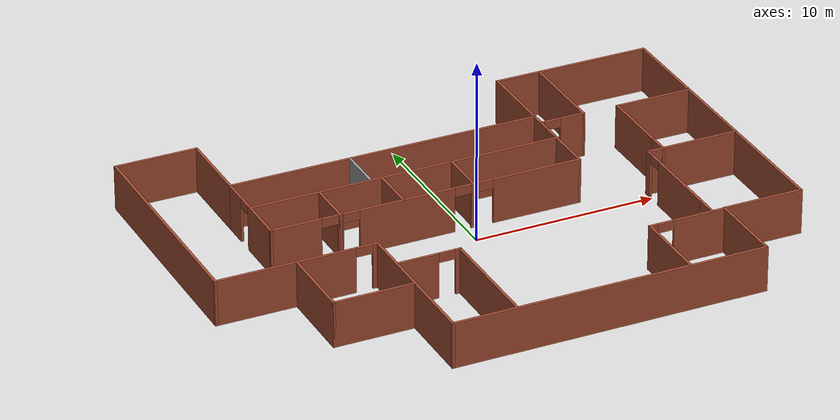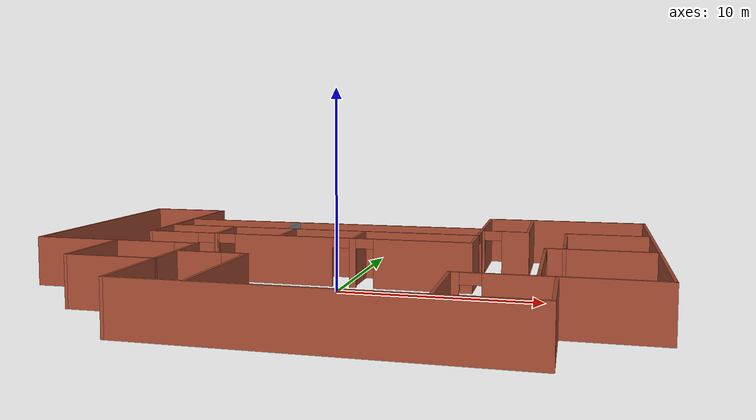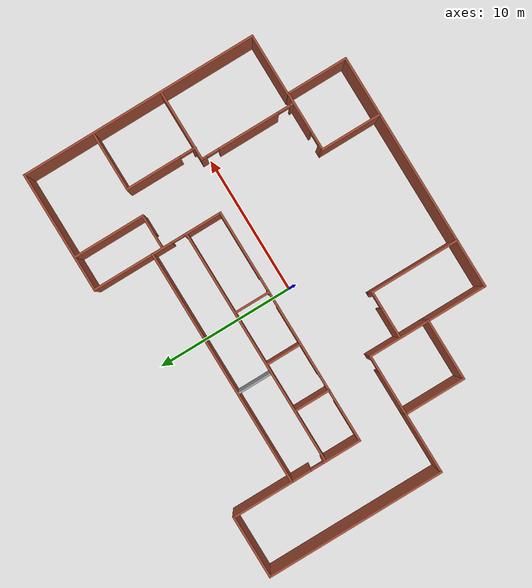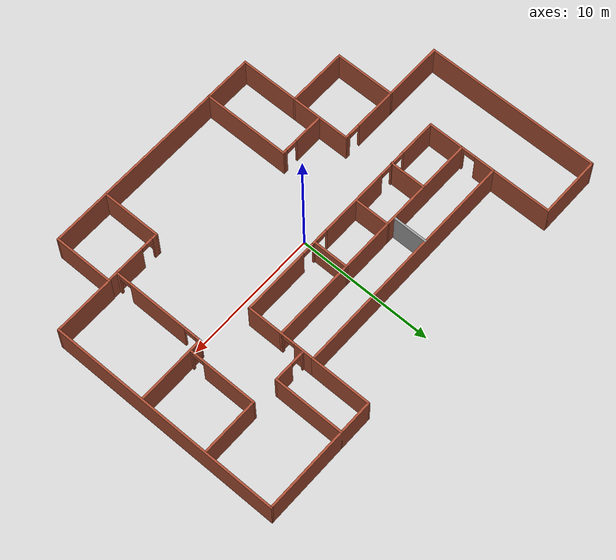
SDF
<?xml version='1.0'?>
<sdf version='1.6'>
  <model name='mybuilding'>
    <pose frame=''>-0.044618 0.031992 0 0 -0 0</pose>
    <link name='Wall_0'>
      <collision name='Wall_0_Collision'>
        <geometry>
          <box>
            <size>4.5 0.15 2.5</size>
          </box>
        </geometry>
        <pose frame=''>0 0 1.25 0 -0 0</pose>
      </collision>
      <visual name='Wall_0_Visual'>
        <pose frame=''>0 0 1.25 0 -0 0</pose>
        <geometry>
          <box>
            <size>4.5 0.15 2.5</size>
          </box>
        </geometry>
        <material>
          <script>
            <uri>file://media/materials/scripts/gazebo.material</uri>
            <name>Gazebo/Bricks</name>
          </script>
          <ambient>1 1 1 1</ambient>
        </material>
        <meta>
          <layer>0</layer>
        </meta>
      </visual>
      <pose frame=''>-12.8 10.725 0 0 -0 0</pose>
    </link>
    <link name='Wall_1'>
      <collision name='Wall_1_Collision'>
        <geometry>
          <box>
            <size>4.5 0.15 2.5</size>
          </box>
        </geometry>
        <pose frame=''>0 0 1.25 0 -0 0</pose>
      </collision>
      <visual name='Wall_1_Visual'>
        <pose frame=''>0 0 1.25 0 -0 0</pose>
        <geometry>
          <box>
            <size>4.5 0.15 2.5</size>
          </box>
        </geometry>
        <material>
          <script>
            <uri>file://media/materials/scripts/gazebo.material</uri>
            <name>Gazebo/Bricks</name>
          </script>
          <ambient>1 1 1 1</ambient>
        </material>
        <meta>
          <layer>0</layer>
        </meta>
      </visual>
      <pose frame=''>-10.625 8.55 0 0 0 -1.5708</pose>
    </link>
    <link name='Wall_16'>
      <collision name='Wall_16_Collision'>
        <geometry>
          <box>
            <size>13 0.15 2.5</size>
          </box>
        </geometry>
        <pose frame=''>0 0 1.25 0 -0 0</pose>
      </collision>
      <visual name='Wall_16_Visual'>
        <pose frame=''>0 0 1.25 0 -0 0</pose>
        <geometry>
          <box>
            <size>13 0.15 2.5</size>
          </box>
        </geometry>
        <material>
          <script>
            <uri>file://media/materials/scripts/gazebo.material</uri>
            <name>Gazebo/Bricks</name>
          </script>
          <ambient>1 1 1 1</ambient>
        </material>
        <meta>
          <layer>0</layer>
        </meta>
      </visual>
      <pose frame=''>-15.075 4.3 0 0 -0 1.5708</pose>
    </link>
    <link name='Wall_2'>
      <collision name='Wall_2_Collision'>
        <geometry>
          <box>
            <size>17.25 0.15 2.5</size>
          </box>
        </geometry>
        <pose frame=''>0 0 1.25 0 -0 0</pose>
      </collision>
      <visual name='Wall_2_Visual'>
        <pose frame=''>0 0 1.25 0 -0 0</pose>
        <geometry>
          <box>
            <size>17.25 0.15 2.5</size>
          </box>
        </geometry>
        <material>
          <script>
            <uri>file://media/materials/scripts/gazebo.material</uri>
            <name>Gazebo/Bricks</name>
          </script>
          <ambient>1 1 1 1</ambient>
        </material>
        <meta>
          <layer>0</layer>
        </meta>
      </visual>
      <pose frame=''>-2.075 6.375 0 0 -0 0</pose>
    </link>
    <link name='Wall_20'>
      <collision name='Wall_20_Collision'>
        <geometry>
          <box>
            <size>4.5 0.15 2.5</size>
          </box>
        </geometry>
        <pose frame=''>0 0 1.25 0 -0 0</pose>
      </collision>
      <visual name='Wall_20_Visual'>
        <pose frame=''>0 0 1.25 0 -0 0</pose>
        <geometry>
          <box>
            <size>4.5 0.15 2.5</size>
          </box>
        </geometry>
        <material>
          <script>
            <uri>file://media/materials/scripts/gazebo.material</uri>
            <name>Gazebo/Bricks</name>
          </script>
          <ambient>1 1 1 1</ambient>
        </material>
        <meta>
          <layer>0</layer>
        </meta>
      </visual>
      <pose frame=''>-12.9 -2.125 0 0 -0 0</pose>
    </link>
    <link name='Wall_21'>
      <collision name='Wall_21_Collision'>
        <geometry>
          <box>
            <size>4.5 0.15 2.5</size>
          </box>
        </geometry>
        <pose frame=''>0 0 1.25 0 -0 0</pose>
      </collision>
      <visual name='Wall_21_Visual'>
        <pose frame=''>0 0 1.25 0 -0 0</pose>
        <geometry>
          <box>
            <size>4.5 0.15 2.5</size>
          </box>
        </geometry>
        <material>
          <script>
            <uri>file://media/materials/scripts/gazebo.material</uri>
            <name>Gazebo/Bricks</name>
          </script>
          <ambient>1 1 1 1</ambient>
        </material>
        <meta>
          <layer>0</layer>
        </meta>
      </visual>
      <pose frame=''>-10.725 -4.3 0 0 0 -1.5708</pose>
    </link>
    <link name='Wall_22'>
      <collision name='Wall_22_Collision'>
        <geometry>
          <box>
            <size>4.5 0.15 2.5</size>
          </box>
        </geometry>
        <pose frame=''>0 0 1.25 0 -0 0</pose>
      </collision>
      <visual name='Wall_22_Visual'>
        <pose frame=''>0 0 1.25 0 -0 0</pose>
        <geometry>
          <box>
            <size>4.5 0.15 2.5</size>
          </box>
        </geometry>
        <material>
          <script>
            <uri>file://media/materials/scripts/gazebo.material</uri>
            <name>Gazebo/Bricks</name>
          </script>
          <ambient>1 1 1 1</ambient>
        </material>
        <meta>
          <layer>0</layer>
        </meta>
      </visual>
      <pose frame=''>-8.55 -6.475 0 0 -0 0</pose>
    </link>
    <link name='Wall_24'>
      <pose frame=''>-10.625 3.825 0 0 0 -1.5708</pose>
      <visual name='Wall_24_Visual_0'>
        <pose frame=''>-1.86673 0 1.25 0 -0 0</pose>
        <geometry>
          <box>
            <size>1.51653 0.15 2.5</size>
          </box>
        </geometry>
        <material>
          <script>
            <uri>file://media/materials/scripts/gazebo.material</uri>
            <name>Gazebo/Bricks</name>
          </script>
          <ambient>1 1 1 1</ambient>
        </material>
        <meta>
          <layer>0</layer>
        </meta>
      </visual>
      <collision name='Wall_24_Collision_0'>
        <geometry>
          <box>
            <size>1.51653 0.15 2.5</size>
          </box>
        </geometry>
        <pose frame=''>-1.86673 0 1.25 0 -0 0</pose>
      </collision>
      <visual name='Wall_24_Visual_1'>
        <pose frame=''>1.20827 0 1.25 0 -0 0</pose>
        <geometry>
          <box>
            <size>2.83347 0.15 2.5</size>
          </box>
        </geometry>
        <material>
          <script>
            <uri>file://media/materials/scripts/gazebo.material</uri>
            <name>Gazebo/Bricks</name>
          </script>
          <ambient>1 1 1 1</ambient>
        </material>
        <meta>
          <layer>0</layer>
        </meta>
      </visual>
      <collision name='Wall_24_Collision_1'>
        <geometry>
          <box>
            <size>2.83347 0.15 2.5</size>
          </box>
        </geometry>
        <pose frame=''>1.20827 0 1.25 0 -0 0</pose>
      </collision>
      <visual name='Wall_24_Visual_2'>
        <pose frame=''>-0.658467 0 2.25 0 -0 0</pose>
        <geometry>
          <box>
            <size>0.9 0.15 0.5</size>
          </box>
        </geometry>
        <material>
          <script>
            <uri>file://media/materials/scripts/gazebo.material</uri>
            <name>Gazebo/Bricks</name>
          </script>
          <ambient>1 1 1 1</ambient>
        </material>
        <meta>
          <layer>0</layer>
        </meta>
      </visual>
      <collision name='Wall_24_Collision_2'>
        <geometry>
          <box>
            <size>0.9 0.15 0.5</size>
          </box>
        </geometry>
        <pose frame=''>-0.658467 0 2.25 0 -0 0</pose>
      </collision>
    </link>
    <link name='Wall_25'>
      <pose frame=''>-2.075 1.275 0 0 -0 0</pose>
      <visual name='Wall_25_Visual_0'>
        <pose frame=''>-7.22106 0 1.25 0 -0 0</pose>
        <geometry>
          <box>
            <size>2.80789 0.15 2.5</size>
          </box>
        </geometry>
        <material>
          <script>
            <uri>file://media/materials/scripts/gazebo.material</uri>
            <name>Gazebo/Bricks</name>
          </script>
          <ambient>1 1 1 1</ambient>
        </material>
        <meta>
          <layer>0</layer>
        </meta>
      </visual>
      <collision name='Wall_25_Collision_0'>
        <geometry>
          <box>
            <size>2.80789 0.15 2.5</size>
          </box>
        </geometry>
        <pose frame=''>-7.22106 0 1.25 0 -0 0</pose>
      </collision>
      <visual name='Wall_25_Visual_1'>
        <pose frame=''>-4.77525 0 1.25 0 -0 0</pose>
        <geometry>
          <box>
            <size>0.283739 0.15 2.5</size>
          </box>
        </geometry>
        <material>
          <script>
            <uri>file://media/materials/scripts/gazebo.material</uri>
            <name>Gazebo/Bricks</name>
          </script>
          <ambient>1 1 1 1</ambient>
        </material>
        <meta>
          <layer>0</layer>
        </meta>
      </visual>
      <collision name='Wall_25_Collision_1'>
        <geometry>
          <box>
            <size>0.283739 0.15 2.5</size>
          </box>
        </geometry>
        <pose frame=''>-4.77525 0 1.25 0 -0 0</pose>
      </collision>
      <visual name='Wall_25_Visual_2'>
        <pose frame=''>-1.10296 0 1.25 0 -0 0</pose>
        <geometry>
          <box>
            <size>5.26082 0.15 2.5</size>
          </box>
        </geometry>
        <material>
          <script>
            <uri>file://media/materials/scripts/gazebo.material</uri>
            <name>Gazebo/Bricks</name>
          </script>
          <ambient>1 1 1 1</ambient>
        </material>
        <meta>
          <layer>0</layer>
        </meta>
      </visual>
      <collision name='Wall_25_Collision_2'>
        <geometry>
          <box>
            <size>5.26082 0.15 2.5</size>
          </box>
        </geometry>
        <pose frame=''>-1.10296 0 1.25 0 -0 0</pose>
      </collision>
      <visual name='Wall_25_Visual_3'>
        <pose frame=''>2.59622 0 1.25 0 -0 0</pose>
        <geometry>
          <box>
            <size>0.337545 0.15 2.5</size>
          </box>
        </geometry>
        <material>
          <script>
            <uri>file://media/materials/scripts/gazebo.material</uri>
            <name>Gazebo/Bricks</name>
          </script>
          <ambient>1 1 1 1</ambient>
        </material>
        <meta>
          <layer>0</layer>
        </meta>
      </visual>
      <collision name='Wall_25_Collision_3'>
        <geometry>
          <box>
            <size>0.337545 0.15 2.5</size>
          </box>
        </geometry>
        <pose frame=''>2.59622 0 1.25 0 -0 0</pose>
      </collision>
      <visual name='Wall_25_Visual_4'>
        <pose frame=''>6.145 0 1.25 0 -0 0</pose>
        <geometry>
          <box>
            <size>4.96001 0.15 2.5</size>
          </box>
        </geometry>
        <material>
          <script>
            <uri>file://media/materials/scripts/gazebo.material</uri>
            <name>Gazebo/Bricks</name>
          </script>
          <ambient>1 1 1 1</ambient>
        </material>
        <meta>
          <layer>0</layer>
        </meta>
      </visual>
      <collision name='Wall_25_Collision_4'>
        <geometry>
          <box>
            <size>4.96001 0.15 2.5</size>
          </box>
        </geometry>
        <pose frame=''>6.145 0 1.25 0 -0 0</pose>
      </collision>
      <visual name='Wall_25_Visual_5'>
        <pose frame=''>-5.36712 0 2.25 0 -0 0</pose>
        <geometry>
          <box>
            <size>0.9 0.15 0.5</size>
          </box>
        </geometry>
        <material>
          <script>
            <uri>file://media/materials/scripts/gazebo.material</uri>
            <name>Gazebo/Bricks</name>
          </script>
          <ambient>1 1 1 1</ambient>
        </material>
        <meta>
          <layer>0</layer>
        </meta>
      </visual>
      <collision name='Wall_25_Collision_5'>
        <geometry>
          <box>
            <size>0.9 0.15 0.5</size>
          </box>
        </geometry>
        <pose frame=''>-5.36712 0 2.25 0 -0 0</pose>
      </collision>
      <visual name='Wall_25_Visual_6'>
        <pose frame=''>-4.18338 0 2.25 0 -0 0</pose>
        <geometry>
          <box>
            <size>0.9 0.15 0.5</size>
          </box>
        </geometry>
        <material>
          <script>
            <uri>file://media/materials/scripts/gazebo.material</uri>
            <name>Gazebo/Bricks</name>
          </script>
          <ambient>1 1 1 1</ambient>
        </material>
        <meta>
          <layer>0</layer>
        </meta>
      </visual>
      <collision name='Wall_25_Collision_6'>
        <geometry>
          <box>
            <size>0.9 0.15 0.5</size>
          </box>
        </geometry>
        <pose frame=''>-4.18338 0 2.25 0 -0 0</pose>
      </collision>
      <visual name='Wall_25_Visual_7'>
        <pose frame=''>1.97745 0 2.25 0 -0 0</pose>
        <geometry>
          <box>
            <size>0.9 0.15 0.5</size>
          </box>
        </geometry>
        <material>
          <script>
            <uri>file://media/materials/scripts/gazebo.material</uri>
            <name>Gazebo/Bricks</name>
          </script>
          <ambient>1 1 1 1</ambient>
        </material>
        <meta>
          <layer>0</layer>
        </meta>
      </visual>
      <collision name='Wall_25_Collision_7'>
        <geometry>
          <box>
            <size>0.9 0.15 0.5</size>
          </box>
        </geometry>
        <pose frame=''>1.97745 0 2.25 0 -0 0</pose>
      </collision>
      <visual name='Wall_25_Visual_8'>
        <pose frame=''>3.21499 0 2.25 0 -0 0</pose>
        <geometry>
          <box>
            <size>0.9 0.15 0.5</size>
          </box>
        </geometry>
        <material>
          <script>
            <uri>file://media/materials/scripts/gazebo.material</uri>
            <name>Gazebo/Bricks</name>
          </script>
          <ambient>1 1 1 1</ambient>
        </material>
        <meta>
          <layer>0</layer>
        </meta>
      </visual>
      <collision name='Wall_25_Collision_8'>
        <geometry>
          <box>
            <size>0.9 0.15 0.5</size>
          </box>
        </geometry>
        <pose frame=''>3.21499 0 2.25 0 -0 0</pose>
      </collision>
    </link>
    <link name='Wall_26'>
      <pose frame=''>6.475 3.825 0 0 -0 1.5708</pose>
      <visual name='Wall_26_Visual_0'>
        <pose frame=''>-1.22172 0 1.25 0 -0 0</pose>
        <geometry>
          <box>
            <size>2.80656 0.15 2.5</size>
          </box>
        </geometry>
        <material>
          <script>
            <uri>file://media/materials/scripts/gazebo.material</uri>
            <name>Gazebo/Bricks</name>
          </script>
          <ambient>1 1 1 1</ambient>
        </material>
        <meta>
          <layer>0</layer>
        </meta>
      </visual>
      <collision name='Wall_26_Collision_0'>
        <geometry>
          <box>
            <size>2.80656 0.15 2.5</size>
          </box>
        </geometry>
        <pose frame=''>-1.22172 0 1.25 0 -0 0</pose>
      </collision>
      <visual name='Wall_26_Visual_1'>
        <pose frame=''>1.85328 0 1.25 0 -0 0</pose>
        <geometry>
          <box>
            <size>1.54344 0.15 2.5</size>
          </box>
        </geometry>
        <material>
          <script>
            <uri>file://media/materials/scripts/gazebo.material</uri>
            <name>Gazebo/Bricks</name>
          </script>
          <ambient>1 1 1 1</ambient>
        </material>
        <meta>
          <layer>0</layer>
        </meta>
      </visual>
      <collision name='Wall_26_Collision_1'>
        <geometry>
          <box>
            <size>1.54344 0.15 2.5</size>
          </box>
        </geometry>
        <pose frame=''>1.85328 0 1.25 0 -0 0</pose>
      </collision>
      <visual name='Wall_26_Visual_2'>
        <pose frame=''>0.631564 0 2.25 0 -0 0</pose>
        <geometry>
          <box>
            <size>0.9 0.15 0.5</size>
          </box>
        </geometry>
        <material>
          <script>
            <uri>file://media/materials/scripts/gazebo.material</uri>
            <name>Gazebo/Bricks</name>
          </script>
          <ambient>1 1 1 1</ambient>
        </material>
        <meta>
          <layer>0</layer>
        </meta>
      </visual>
      <collision name='Wall_26_Collision_2'>
        <geometry>
          <box>
            <size>0.9 0.15 0.5</size>
          </box>
        </geometry>
        <pose frame=''>0.631564 0 2.25 0 -0 0</pose>
      </collision>
    </link>
    <link name='Wall_28'>
      <collision name='Wall_28_Collision'>
        <geometry>
          <box>
            <size>17.25 0.15 2.5</size>
          </box>
        </geometry>
        <pose frame=''>0 0 1.25 0 -0 0</pose>
      </collision>
      <visual name='Wall_28_Visual'>
        <pose frame=''>0 0 1.25 0 -0 0</pose>
        <geometry>
          <box>
            <size>17.25 0.15 2.5</size>
          </box>
        </geometry>
        <material>
          <script>
            <uri>file://media/materials/scripts/gazebo.material</uri>
            <name>Gazebo/Bricks</name>
          </script>
          <ambient>1 1 1 1</ambient>
        </material>
        <meta>
          <layer>0</layer>
        </meta>
      </visual>
      <pose frame=''>-2.06669 3.83779 0 0 -0 0</pose>
    </link>
    <link name='Wall_3'>
      <collision name='Wall_3_Collision'>
        <geometry>
          <box>
            <size>4.5 0.15 2.5</size>
          </box>
        </geometry>
        <pose frame=''>0 0 1.25 0 -0 0</pose>
      </collision>
      <visual name='Wall_3_Visual'>
        <pose frame=''>0 0 1.25 0 -0 0</pose>
        <geometry>
          <box>
            <size>4.5 0.15 2.5</size>
          </box>
        </geometry>
        <material>
          <script>
            <uri>file://media/materials/scripts/gazebo.material</uri>
            <name>Gazebo/Bricks</name>
          </script>
          <ambient>1 1 1 1</ambient>
        </material>
        <meta>
          <layer>0</layer>
        </meta>
      </visual>
      <pose frame=''>6.475 8.55 0 0 -0 1.5708</pose>
    </link>
    <link name='Wall_30'>
      <collision name='Wall_30_Collision'>
        <geometry>
          <box>
            <size>2.5 0.15 2.5</size>
          </box>
        </geometry>
        <pose frame=''>0 0 1.25 0 -0 0</pose>
      </collision>
      <visual name='Wall_30_Visual'>
        <pose frame=''>0 0 1.25 0 -0 0</pose>
        <geometry>
          <box>
            <size>2.5 0.15 2.5</size>
          </box>
        </geometry>
        <material>
          <script>
            <uri>file://media/materials/scripts/gazebo.material</uri>
            <name>Gazebo/Grey</name>
          </script>
          <ambient>1 1 1 1</ambient>
        </material>
        <meta>
          <layer>0</layer>
        </meta>
      </visual>
      <pose frame=''>-3.99851 5.16479 0 0 0 -1.5708</pose>
    </link>
    <link name='Wall_33'>
      <collision name='Wall_33_Collision'>
        <geometry>
          <box>
            <size>2.7 0.15 2.5</size>
          </box>
        </geometry>
        <pose frame=''>0 0 1.25 0 -0 0</pose>
      </collision>
      <visual name='Wall_33_Visual'>
        <pose frame=''>0 0 1.25 0 -0 0</pose>
        <geometry>
          <box>
            <size>2.7 0.15 2.5</size>
          </box>
        </geometry>
        <material>
          <script>
            <uri>file://media/materials/scripts/gazebo.material</uri>
            <name>Gazebo/Bricks</name>
          </script>
          <ambient>1 1 1 1</ambient>
        </material>
        <meta>
          <layer>0</layer>
        </meta>
      </visual>
      <pose frame=''>-6.85025 2.53589 0 0 0 -1.5708</pose>
    </link>
    <link name='Wall_35'>
      <collision name='Wall_35_Collision'>
        <geometry>
          <box>
            <size>2.7 0.15 2.5</size>
          </box>
        </geometry>
        <pose frame=''>0 0 1.25 0 -0 0</pose>
      </collision>
      <visual name='Wall_35_Visual'>
        <pose frame=''>0 0 1.25 0 -0 0</pose>
        <geometry>
          <box>
            <size>2.7 0.15 2.5</size>
          </box>
        </geometry>
        <material>
          <script>
            <uri>file://media/materials/scripts/gazebo.material</uri>
            <name>Gazebo/Bricks</name>
          </script>
          <ambient>1 1 1 1</ambient>
        </material>
        <meta>
          <layer>0</layer>
        </meta>
      </visual>
      <pose frame=''>-3.37974 2.56279 0 0 0 -1.5708</pose>
    </link>
    <link name='Wall_37'>
      <collision name='Wall_37_Collision'>
        <geometry>
          <box>
            <size>2.7 0.15 2.5</size>
          </box>
        </geometry>
        <pose frame=''>0 0 1.25 0 -0 0</pose>
      </collision>
      <visual name='Wall_37_Visual'>
        <pose frame=''>0 0 1.25 0 -0 0</pose>
        <geometry>
          <box>
            <size>2.7 0.15 2.5</size>
          </box>
        </geometry>
        <material>
          <script>
            <uri>file://media/materials/scripts/gazebo.material</uri>
            <name>Gazebo/Bricks</name>
          </script>
          <ambient>1 1 1 1</ambient>
        </material>
        <meta>
          <layer>0</layer>
        </meta>
      </visual>
      <pose frame=''>0.52122 2.56279 0 0 0 -1.5708</pose>
    </link>
    <link name='Wall_39'>
      <collision name='Wall_39_Collision'>
        <geometry>
          <box>
            <size>5.25 0.15 2.5</size>
          </box>
        </geometry>
        <pose frame=''>0 0 1.25 0 -0 0</pose>
      </collision>
      <visual name='Wall_39_Visual'>
        <pose frame=''>0 0 1.25 0 -0 0</pose>
        <geometry>
          <box>
            <size>5.25 0.15 2.5</size>
          </box>
        </geometry>
        <material>
          <script>
            <uri>file://media/materials/scripts/gazebo.material</uri>
            <name>Gazebo/Bricks</name>
          </script>
          <ambient>1 1 1 1</ambient>
        </material>
        <meta>
          <layer>0</layer>
        </meta>
      </visual>
      <pose frame=''>8.91501 8.175 0 0 0 -1.5708</pose>
    </link>
    <link name='Wall_4'>
      <collision name='Wall_4_Collision'>
        <geometry>
          <box>
            <size>8.75 0.15 2.5</size>
          </box>
        </geometry>
        <pose frame=''>0 0 1.25 0 -0 0</pose>
      </collision>
      <visual name='Wall_4_Visual'>
        <pose frame=''>0 0 1.25 0 -0 0</pose>
        <geometry>
          <box>
            <size>8.75 0.15 2.5</size>
          </box>
        </geometry>
        <material>
          <script>
            <uri>file://media/materials/scripts/gazebo.material</uri>
            <name>Gazebo/Bricks</name>
          </script>
          <ambient>1 1 1 1</ambient>
        </material>
        <meta>
          <layer>0</layer>
        </meta>
      </visual>
      <pose frame=''>10.775 10.725 0 0 -0 0</pose>
    </link>
    <link name='Wall_40'>
      <pose frame=''>7.74001 5.625 0 0 -0 3.14159</pose>
      <visual name='Wall_40_Visual_0'>
        <pose frame=''>-0.536244 0 1.25 0 -0 0</pose>
        <geometry>
          <box>
            <size>1.42751 0.15 2.5</size>
          </box>
        </geometry>
        <material>
          <script>
            <uri>file://media/materials/scripts/gazebo.material</uri>
            <name>Gazebo/Bricks</name>
          </script>
          <ambient>1 1 1 1</ambient>
        </material>
        <meta>
          <layer>0</layer>
        </meta>
      </visual>
      <collision name='Wall_40_Collision_0'>
        <geometry>
          <box>
            <size>1.42751 0.15 2.5</size>
          </box>
        </geometry>
        <pose frame=''>-0.536244 0 1.25 0 -0 0</pose>
      </collision>
      <visual name='Wall_40_Visual_1'>
        <pose frame=''>1.16376 0 1.25 0 -0 0</pose>
        <geometry>
          <box>
            <size>0.172488 0.15 2.5</size>
          </box>
        </geometry>
        <material>
          <script>
            <uri>file://media/materials/scripts/gazebo.material</uri>
            <name>Gazebo/Bricks</name>
          </script>
          <ambient>1 1 1 1</ambient>
        </material>
        <meta>
          <layer>0</layer>
        </meta>
      </visual>
      <collision name='Wall_40_Collision_1'>
        <geometry>
          <box>
            <size>0.172488 0.15 2.5</size>
          </box>
        </geometry>
        <pose frame=''>1.16376 0 1.25 0 -0 0</pose>
      </collision>
      <visual name='Wall_40_Visual_2'>
        <pose frame=''>0.627512 0 2.25 0 -0 0</pose>
        <geometry>
          <box>
            <size>0.9 0.15 0.5</size>
          </box>
        </geometry>
        <material>
          <script>
            <uri>file://media/materials/scripts/gazebo.material</uri>
            <name>Gazebo/Bricks</name>
          </script>
          <ambient>1 1 1 1</ambient>
        </material>
        <meta>
          <layer>0</layer>
        </meta>
      </visual>
      <collision name='Wall_40_Collision_2'>
        <geometry>
          <box>
            <size>0.9 0.15 0.5</size>
          </box>
        </geometry>
        <pose frame=''>0.627512 0 2.25 0 -0 0</pose>
      </collision>
    </link>
    <link name='Wall_42'>
      <pose frame=''>-8.55 -2.125 0 0 -0 0</pose>
      <visual name='Wall_42_Visual_0'>
        <pose frame=''>-0.634639 0 1.25 0 -0 0</pose>
        <geometry>
          <box>
            <size>3.23072 0.15 2.5</size>
          </box>
        </geometry>
        <material>
          <script>
            <uri>file://media/materials/scripts/gazebo.material</uri>
            <name>Gazebo/Bricks</name>
          </script>
          <ambient>1 1 1 1</ambient>
        </material>
        <meta>
          <layer>0</layer>
        </meta>
      </visual>
      <collision name='Wall_42_Collision_0'>
        <geometry>
          <box>
            <size>3.23072 0.15 2.5</size>
          </box>
        </geometry>
        <pose frame=''>-0.634639 0 1.25 0 -0 0</pose>
      </collision>
      <visual name='Wall_42_Visual_1'>
        <pose frame=''>2.06536 0 1.25 0 -0 0</pose>
        <geometry>
          <box>
            <size>0.369277 0.15 2.5</size>
          </box>
        </geometry>
        <material>
          <script>
            <uri>file://media/materials/scripts/gazebo.material</uri>
            <name>Gazebo/Bricks</name>
          </script>
          <ambient>1 1 1 1</ambient>
        </material>
        <meta>
          <layer>0</layer>
        </meta>
      </visual>
      <collision name='Wall_42_Collision_1'>
        <geometry>
          <box>
            <size>0.369277 0.15 2.5</size>
          </box>
        </geometry>
        <pose frame=''>2.06536 0 1.25 0 -0 0</pose>
      </collision>
      <visual name='Wall_42_Visual_2'>
        <pose frame=''>1.43072 0 2.25 0 -0 0</pose>
        <geometry>
          <box>
            <size>0.9 0.15 0.5</size>
          </box>
        </geometry>
        <material>
          <script>
            <uri>file://media/materials/scripts/gazebo.material</uri>
            <name>Gazebo/Bricks</name>
          </script>
          <ambient>1 1 1 1</ambient>
        </material>
        <meta>
          <layer>0</layer>
        </meta>
      </visual>
      <collision name='Wall_42_Collision_2'>
        <geometry>
          <box>
            <size>0.9 0.15 0.5</size>
          </box>
        </geometry>
        <pose frame=''>1.43072 0 2.25 0 -0 0</pose>
      </collision>
    </link>
    <link name='Wall_43'>
      <collision name='Wall_43_Collision'>
        <geometry>
          <box>
            <size>4.5 0.15 2.5</size>
          </box>
        </geometry>
        <pose frame=''>0 0 1.25 0 -0 0</pose>
      </collision>
      <visual name='Wall_43_Visual'>
        <pose frame=''>0 0 1.25 0 -0 0</pose>
        <geometry>
          <box>
            <size>4.5 0.15 2.5</size>
          </box>
        </geometry>
        <material>
          <script>
            <uri>file://media/materials/scripts/gazebo.material</uri>
            <name>Gazebo/Bricks</name>
          </script>
          <ambient>1 1 1 1</ambient>
        </material>
        <meta>
          <layer>0</layer>
        </meta>
      </visual>
      <pose frame=''>-6.375 -4.3 0 0 0 -1.5708</pose>
    </link>
    <link name='Wall_45'>
      <pose frame=''>-4.61028 -4.36767 0 0 -0 0</pose>
      <visual name='Wall_45_Visual_0'>
        <pose frame=''>-0.632697 0 1.25 0 -0 0</pose>
        <geometry>
          <box>
            <size>2.23461 0.15 2.5</size>
          </box>
        </geometry>
        <material>
          <script>
            <uri>file://media/materials/scripts/gazebo.material</uri>
            <name>Gazebo/Bricks</name>
          </script>
          <ambient>1 1 1 1</ambient>
        </material>
        <meta>
          <layer>0</layer>
        </meta>
      </visual>
      <collision name='Wall_45_Collision_0'>
        <geometry>
          <box>
            <size>2.23461 0.15 2.5</size>
          </box>
        </geometry>
        <pose frame=''>-0.632697 0 1.25 0 -0 0</pose>
      </collision>
      <visual name='Wall_45_Visual_1'>
        <pose frame=''>1.5673 0 1.25 0 -0 0</pose>
        <geometry>
          <box>
            <size>0.365393 0.15 2.5</size>
          </box>
        </geometry>
        <material>
          <script>
            <uri>file://media/materials/scripts/gazebo.material</uri>
            <name>Gazebo/Bricks</name>
          </script>
          <ambient>1 1 1 1</ambient>
        </material>
        <meta>
          <layer>0</layer>
        </meta>
      </visual>
      <collision name='Wall_45_Collision_1'>
        <geometry>
          <box>
            <size>0.365393 0.15 2.5</size>
          </box>
        </geometry>
        <pose frame=''>1.5673 0 1.25 0 -0 0</pose>
      </collision>
      <visual name='Wall_45_Visual_2'>
        <pose frame=''>0.934607 0 2.25 0 -0 0</pose>
        <geometry>
          <box>
            <size>0.9 0.15 0.5</size>
          </box>
        </geometry>
        <material>
          <script>
            <uri>file://media/materials/scripts/gazebo.material</uri>
            <name>Gazebo/Bricks</name>
          </script>
          <ambient>1 1 1 1</ambient>
        </material>
        <meta>
          <layer>0</layer>
        </meta>
      </visual>
      <collision name='Wall_45_Collision_2'>
        <geometry>
          <box>
            <size>0.9 0.15 0.5</size>
          </box>
        </geometry>
        <pose frame=''>0.934607 0 2.25 0 -0 0</pose>
      </collision>
    </link>
    <link name='Wall_46'>
      <collision name='Wall_46_Collision'>
        <geometry>
          <box>
            <size>6.5 0.15 2.5</size>
          </box>
        </geometry>
        <pose frame=''>0 0 1.25 0 -0 0</pose>
      </collision>
      <visual name='Wall_46_Visual'>
        <pose frame=''>0 0 1.25 0 -0 0</pose>
        <geometry>
          <box>
            <size>6.5 0.15 2.5</size>
          </box>
        </geometry>
        <material>
          <script>
            <uri>file://media/materials/scripts/gazebo.material</uri>
            <name>Gazebo/Bricks</name>
          </script>
          <ambient>1 1 1 1</ambient>
        </material>
        <meta>
          <layer>0</layer>
        </meta>
      </visual>
      <pose frame=''>-2.93528 -7.54267 0 0 0 -1.5708</pose>
    </link>
    <link name='Wall_48'>
      <collision name='Wall_48_Collision'>
        <geometry>
          <box>
            <size>4.4 0.15 2.5</size>
          </box>
        </geometry>
        <pose frame=''>0 0 1.25 0 -0 0</pose>
      </collision>
      <visual name='Wall_48_Visual'>
        <pose frame=''>0 0 1.25 0 -0 0</pose>
        <geometry>
          <box>
            <size>4.4 0.15 2.5</size>
          </box>
        </geometry>
        <material>
          <script>
            <uri>file://media/materials/scripts/gazebo.material</uri>
            <name>Gazebo/Bricks</name>
          </script>
          <ambient>1 1 1 1</ambient>
        </material>
        <meta>
          <layer>0</layer>
        </meta>
      </visual>
      <pose frame=''>6.52062 -8.53801 0 0 -0 1.5708</pose>
    </link>
    <link name='Wall_5'>
      <collision name='Wall_5_Collision'>
        <geometry>
          <box>
            <size>17.25 0.15 2.5</size>
          </box>
        </geometry>
        <pose frame=''>0 0 1.25 0 -0 0</pose>
      </collision>
      <visual name='Wall_5_Visual'>
        <pose frame=''>0 0 1.25 0 -0 0</pose>
        <geometry>
          <box>
            <size>17.25 0.15 2.5</size>
          </box>
        </geometry>
        <material>
          <script>
            <uri>file://media/materials/scripts/gazebo.material</uri>
            <name>Gazebo/Bricks</name>
          </script>
          <ambient>1 1 1 1</ambient>
        </material>
        <meta>
          <layer>0</layer>
        </meta>
      </visual>
      <pose frame=''>15.075 2.175 0 0 0 -1.5708</pose>
    </link>
    <link name='Wall_53'>
      <pose frame=''>8.57062 -6.41301 0 0 -0 0</pose>
      <visual name='Wall_53_Visual_0'>
        <pose frame=''>-1.88205 0 1.25 0 -0 0</pose>
        <geometry>
          <box>
            <size>0.485901 0.15 2.5</size>
          </box>
        </geometry>
        <material>
          <script>
            <uri>file://media/materials/scripts/gazebo.material</uri>
            <name>Gazebo/Bricks</name>
          </script>
          <ambient>1 1 1 1</ambient>
        </material>
        <meta>
          <layer>0</layer>
        </meta>
      </visual>
      <collision name='Wall_53_Collision_0'>
        <geometry>
          <box>
            <size>0.485901 0.15 2.5</size>
          </box>
        </geometry>
        <pose frame=''>-1.88205 0 1.25 0 -0 0</pose>
      </collision>
      <visual name='Wall_53_Visual_1'>
        <pose frame=''>0.692951 0 1.25 0 -0 0</pose>
        <geometry>
          <box>
            <size>2.8641 0.15 2.5</size>
          </box>
        </geometry>
        <material>
          <script>
            <uri>file://media/materials/scripts/gazebo.material</uri>
            <name>Gazebo/Bricks</name>
          </script>
          <ambient>1 1 1 1</ambient>
        </material>
        <meta>
          <layer>0</layer>
        </meta>
      </visual>
      <collision name='Wall_53_Collision_1'>
        <geometry>
          <box>
            <size>2.8641 0.15 2.5</size>
          </box>
        </geometry>
        <pose frame=''>0.692951 0 1.25 0 -0 0</pose>
      </collision>
      <visual name='Wall_53_Visual_2'>
        <pose frame=''>-1.1891 0 2.25 0 -0 0</pose>
        <geometry>
          <box>
            <size>0.9 0.15 0.5</size>
          </box>
        </geometry>
        <material>
          <script>
            <uri>file://media/materials/scripts/gazebo.material</uri>
            <name>Gazebo/Bricks</name>
          </script>
          <ambient>1 1 1 1</ambient>
        </material>
        <meta>
          <layer>0</layer>
        </meta>
      </visual>
      <collision name='Wall_53_Collision_2'>
        <geometry>
          <box>
            <size>0.9 0.15 0.5</size>
          </box>
        </geometry>
        <pose frame=''>-1.1891 0 2.25 0 -0 0</pose>
      </collision>
    </link>
    <link name='Wall_55'>
      <pose frame=''>10.018 -2.93351 0 0 -0 1.5708</pose>
      <visual name='Wall_55_Visual_0'>
        <pose frame=''>-3.35121 0 1.25 0 -0 0</pose>
        <geometry>
          <box>
            <size>0.297579 0.15 2.5</size>
          </box>
        </geometry>
        <material>
          <script>
            <uri>file://media/materials/scripts/gazebo.material</uri>
            <name>Gazebo/Bricks</name>
          </script>
          <ambient>1 1 1 1</ambient>
        </material>
        <meta>
          <layer>0</layer>
        </meta>
      </visual>
      <collision name='Wall_55_Collision_0'>
        <geometry>
          <box>
            <size>0.297579 0.15 2.5</size>
          </box>
        </geometry>
        <pose frame=''>-3.35121 0 1.25 0 -0 0</pose>
      </collision>
      <visual name='Wall_55_Visual_1'>
        <pose frame=''>-0.062105 0 1.25 0 -0 0</pose>
        <geometry>
          <box>
            <size>4.48063 0.15 2.5</size>
          </box>
        </geometry>
        <material>
          <script>
            <uri>file://media/materials/scripts/gazebo.material</uri>
            <name>Gazebo/Bricks</name>
          </script>
          <ambient>1 1 1 1</ambient>
        </material>
        <meta>
          <layer>0</layer>
        </meta>
      </visual>
      <collision name='Wall_55_Collision_1'>
        <geometry>
          <box>
            <size>4.48063 0.15 2.5</size>
          </box>
        </geometry>
        <pose frame=''>-0.062105 0 1.25 0 -0 0</pose>
      </collision>
      <visual name='Wall_55_Visual_2'>
        <pose frame=''>3.28911 0 1.25 0 -0 0</pose>
        <geometry>
          <box>
            <size>0.421789 0.15 2.5</size>
          </box>
        </geometry>
        <material>
          <script>
            <uri>file://media/materials/scripts/gazebo.material</uri>
            <name>Gazebo/Bricks</name>
          </script>
          <ambient>1 1 1 1</ambient>
        </material>
        <meta>
          <layer>0</layer>
        </meta>
      </visual>
      <collision name='Wall_55_Collision_2'>
        <geometry>
          <box>
            <size>0.421789 0.15 2.5</size>
          </box>
        </geometry>
        <pose frame=''>3.28911 0 1.25 0 -0 0</pose>
      </collision>
      <visual name='Wall_55_Visual_3'>
        <pose frame=''>-2.75242 0 2.25 0 -0 0</pose>
        <geometry>
          <box>
            <size>0.9 0.15 0.5</size>
          </box>
        </geometry>
        <material>
          <script>
            <uri>file://media/materials/scripts/gazebo.material</uri>
            <name>Gazebo/Bricks</name>
          </script>
          <ambient>1 1 1 1</ambient>
        </material>
        <meta>
          <layer>0</layer>
        </meta>
      </visual>
      <collision name='Wall_55_Collision_3'>
        <geometry>
          <box>
            <size>0.9 0.15 0.5</size>
          </box>
        </geometry>
        <pose frame=''>-2.75242 0 2.25 0 -0 0</pose>
      </collision>
      <visual name='Wall_55_Visual_4'>
        <pose frame=''>2.62821 0 2.25 0 -0 0</pose>
        <geometry>
          <box>
            <size>0.9 0.15 0.5</size>
          </box>
        </geometry>
        <material>
          <script>
            <uri>file://media/materials/scripts/gazebo.material</uri>
            <name>Gazebo/Bricks</name>
          </script>
          <ambient>1 1 1 1</ambient>
        </material>
        <meta>
          <layer>0</layer>
        </meta>
      </visual>
      <collision name='Wall_55_Collision_4'>
        <geometry>
          <box>
            <size>0.9 0.15 0.5</size>
          </box>
        </geometry>
        <pose frame=''>2.62821 0 2.25 0 -0 0</pose>
      </collision>
    </link>
    <link name='Wall_56'>
      <collision name='Wall_56_Collision'>
        <geometry>
          <box>
            <size>5.2 0.15 2.5</size>
          </box>
        </geometry>
        <pose frame=''>0 0 1.25 0 -0 0</pose>
      </collision>
      <visual name='Wall_56_Visual'>
        <pose frame=''>0 0 1.25 0 -0 0</pose>
        <geometry>
          <box>
            <size>5.2 0.15 2.5</size>
          </box>
        </geometry>
        <material>
          <script>
            <uri>file://media/materials/scripts/gazebo.material</uri>
            <name>Gazebo/Bricks</name>
          </script>
          <ambient>1 1 1 1</ambient>
        </material>
        <meta>
          <layer>0</layer>
        </meta>
      </visual>
      <pose frame=''>12.543 0.491493 0 0 -0 0</pose>
    </link>
    <link name='Wall_58'>
      <pose frame=''>10.8789 3.0249 0 0 -0 1.5708</pose>
      <visual name='Wall_58_Visual_0'>
        <pose frame=''>-2.47621 0 1.25 0 -0 0</pose>
        <geometry>
          <box>
            <size>0.297579 0.15 2.5</size>
          </box>
        </geometry>
        <material>
          <script>
            <uri>file://media/materials/scripts/gazebo.material</uri>
            <name>Gazebo/Bricks</name>
          </script>
          <ambient>1 1 1 1</ambient>
        </material>
        <meta>
          <layer>0</layer>
        </meta>
      </visual>
      <collision name='Wall_58_Collision_0'>
        <geometry>
          <box>
            <size>0.297579 0.15 2.5</size>
          </box>
        </geometry>
        <pose frame=''>-2.47621 0 1.25 0 -0 0</pose>
      </collision>
      <visual name='Wall_58_Visual_1'>
        <pose frame=''>0.598789 0 1.25 0 -0 0</pose>
        <geometry>
          <box>
            <size>4.05242 0.15 2.5</size>
          </box>
        </geometry>
        <material>
          <script>
            <uri>file://media/materials/scripts/gazebo.material</uri>
            <name>Gazebo/Bricks</name>
          </script>
          <ambient>1 1 1 1</ambient>
        </material>
        <meta>
          <layer>0</layer>
        </meta>
      </visual>
      <collision name='Wall_58_Collision_1'>
        <geometry>
          <box>
            <size>4.05242 0.15 2.5</size>
          </box>
        </geometry>
        <pose frame=''>0.598789 0 1.25 0 -0 0</pose>
      </collision>
      <visual name='Wall_58_Visual_2'>
        <pose frame=''>-1.87742 0 2.25 0 -0 0</pose>
        <geometry>
          <box>
            <size>0.9 0.15 0.5</size>
          </box>
        </geometry>
        <material>
          <script>
            <uri>file://media/materials/scripts/gazebo.material</uri>
            <name>Gazebo/Bricks</name>
          </script>
          <ambient>1 1 1 1</ambient>
        </material>
        <meta>
          <layer>0</layer>
        </meta>
      </visual>
      <collision name='Wall_58_Collision_2'>
        <geometry>
          <box>
            <size>0.9 0.15 0.5</size>
          </box>
        </geometry>
        <pose frame=''>-1.87742 0 2.25 0 -0 0</pose>
      </collision>
    </link>
    <link name='Wall_59'>
      <collision name='Wall_59_Collision'>
        <geometry>
          <box>
            <size>4.25 0.15 2.5</size>
          </box>
        </geometry>
        <pose frame=''>0 0 1.25 0 -0 0</pose>
      </collision>
      <visual name='Wall_59_Visual'>
        <pose frame=''>0 0 1.25 0 -0 0</pose>
        <geometry>
          <box>
            <size>4.25 0.15 2.5</size>
          </box>
        </geometry>
        <material>
          <script>
            <uri>file://media/materials/scripts/gazebo.material</uri>
            <name>Gazebo/Bricks</name>
          </script>
          <ambient>1 1 1 1</ambient>
        </material>
        <meta>
          <layer>0</layer>
        </meta>
      </visual>
      <pose frame=''>12.9289 5.5749 0 0 -0 0</pose>
    </link>
    <link name='Wall_6'>
      <collision name='Wall_6_Collision'>
        <geometry>
          <box>
            <size>4.5 0.15 2.5</size>
          </box>
        </geometry>
        <pose frame=''>0 0 1.25 0 -0 0</pose>
      </collision>
      <visual name='Wall_6_Visual'>
        <pose frame=''>0 0 1.25 0 -0 0</pose>
        <geometry>
          <box>
            <size>4.5 0.15 2.5</size>
          </box>
        </geometry>
        <material>
          <script>
            <uri>file://media/materials/scripts/gazebo.material</uri>
            <name>Gazebo/Bricks</name>
          </script>
          <ambient>1 1 1 1</ambient>
        </material>
        <meta>
          <layer>0</layer>
        </meta>
      </visual>
      <pose frame=''>12.9 -6.375 0 0 -0 3.14159</pose>
    </link>
    <link name='Wall_7'>
      <collision name='Wall_7_Collision'>
        <geometry>
          <box>
            <size>4.5 0.15 2.5</size>
          </box>
        </geometry>
        <pose frame=''>0 0 1.25 0 -0 0</pose>
      </collision>
      <visual name='Wall_7_Visual'>
        <pose frame=''>0 0 1.25 0 -0 0</pose>
        <geometry>
          <box>
            <size>4.5 0.15 2.5</size>
          </box>
        </geometry>
        <material>
          <script>
            <uri>file://media/materials/scripts/gazebo.material</uri>
            <name>Gazebo/Bricks</name>
          </script>
          <ambient>1 1 1 1</ambient>
        </material>
        <meta>
          <layer>0</layer>
        </meta>
      </visual>
      <pose frame=''>10.725 -8.55 0 0 0 -1.5708</pose>
    </link>
    <link name='Wall_8'>
      <collision name='Wall_8_Collision'>
        <geometry>
          <box>
            <size>17.25 0.15 2.5</size>
          </box>
        </geometry>
        <pose frame=''>0 0 1.25 0 -0 0</pose>
      </collision>
      <visual name='Wall_8_Visual'>
        <pose frame=''>0 0 1.25 0 -0 0</pose>
        <geometry>
          <box>
            <size>17.25 0.15 2.5</size>
          </box>
        </geometry>
        <material>
          <script>
            <uri>file://media/materials/scripts/gazebo.material</uri>
            <name>Gazebo/Bricks</name>
          </script>
          <ambient>1 1 1 1</ambient>
        </material>
        <meta>
          <layer>0</layer>
        </meta>
      </visual>
      <pose frame=''>2.175 -10.725 0 0 -0 3.14159</pose>
    </link>
    <link name='Wall_9'>
      <collision name='Wall_9_Collision'>
        <geometry>
          <box>
            <size>4.4 0.15 2.5</size>
          </box>
        </geometry>
        <pose frame=''>0 0 1.25 0 -0 0</pose>
      </collision>
      <visual name='Wall_9_Visual'>
        <pose frame=''>0 0 1.25 0 -0 0</pose>
        <geometry>
          <box>
            <size>4.4 0.15 2.5</size>
          </box>
        </geometry>
        <material>
          <script>
            <uri>file://media/materials/scripts/gazebo.material</uri>
            <name>Gazebo/Bricks</name>
          </script>
          <ambient>1 1 1 1</ambient>
        </material>
        <meta>
          <layer>0</layer>
        </meta>
      </visual>
      <pose frame=''>-6.375 -8.6 0 0 -0 1.5708</pose>
    </link>
    <static>1</static>
  </model>
</sdf>
